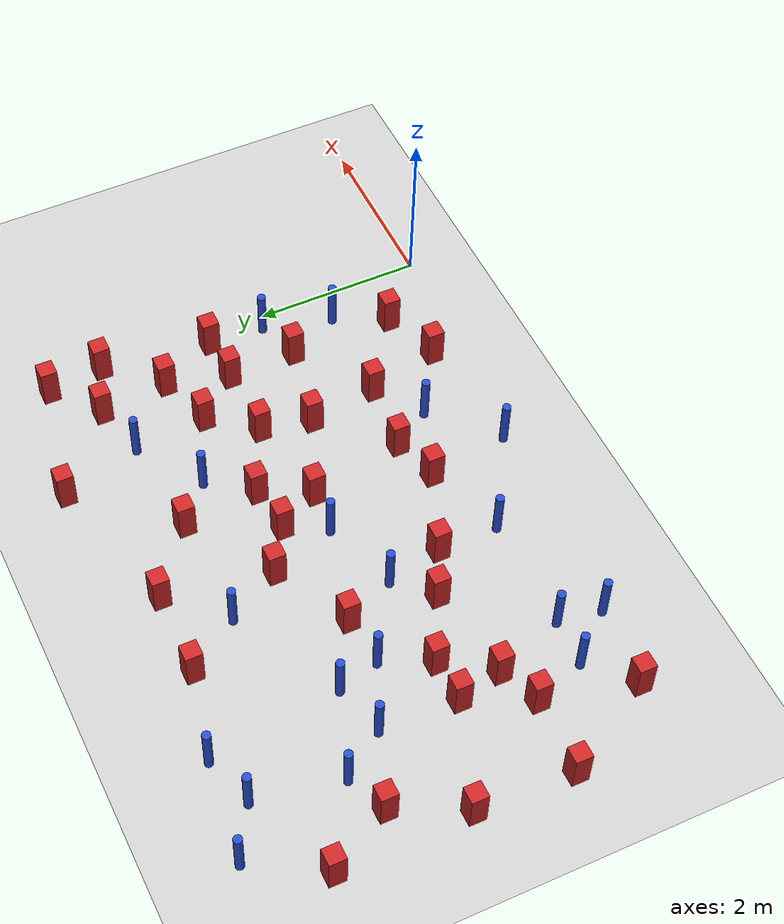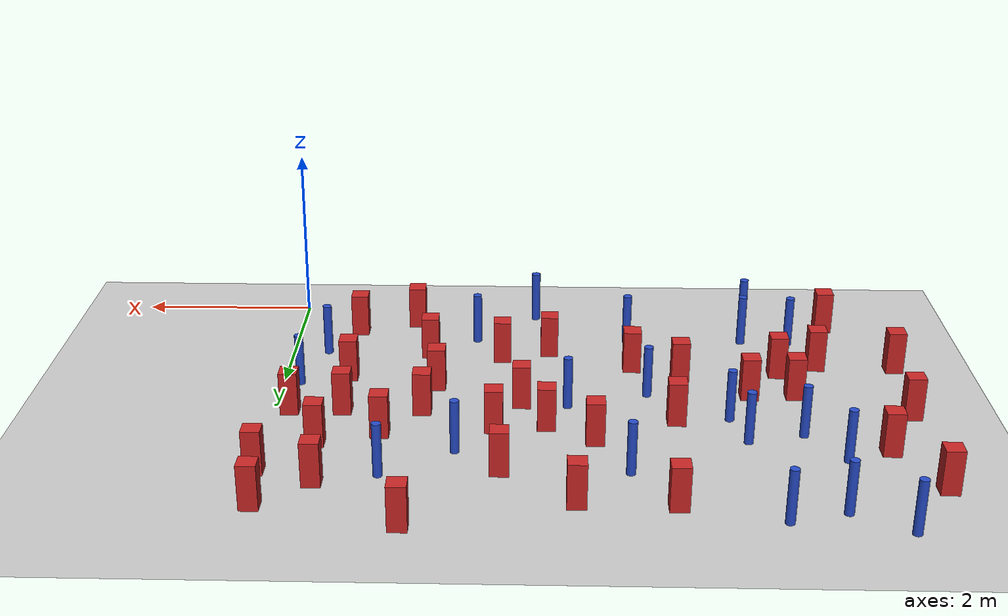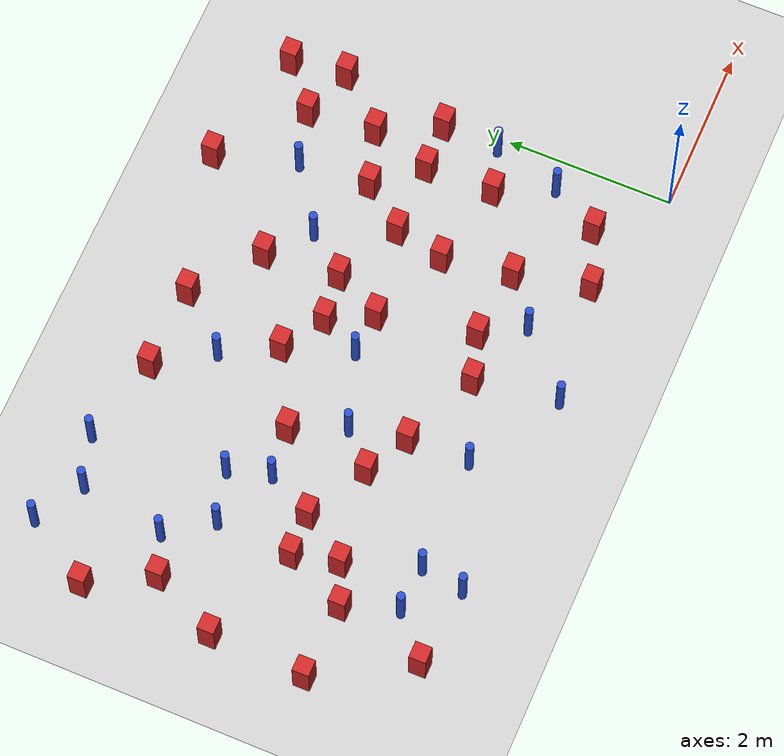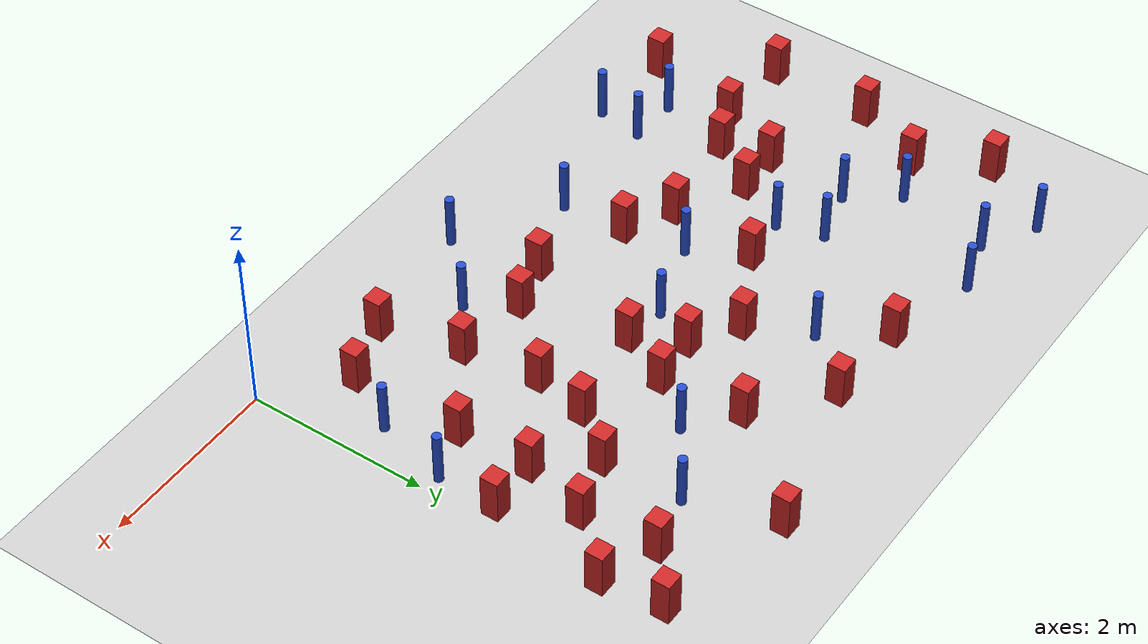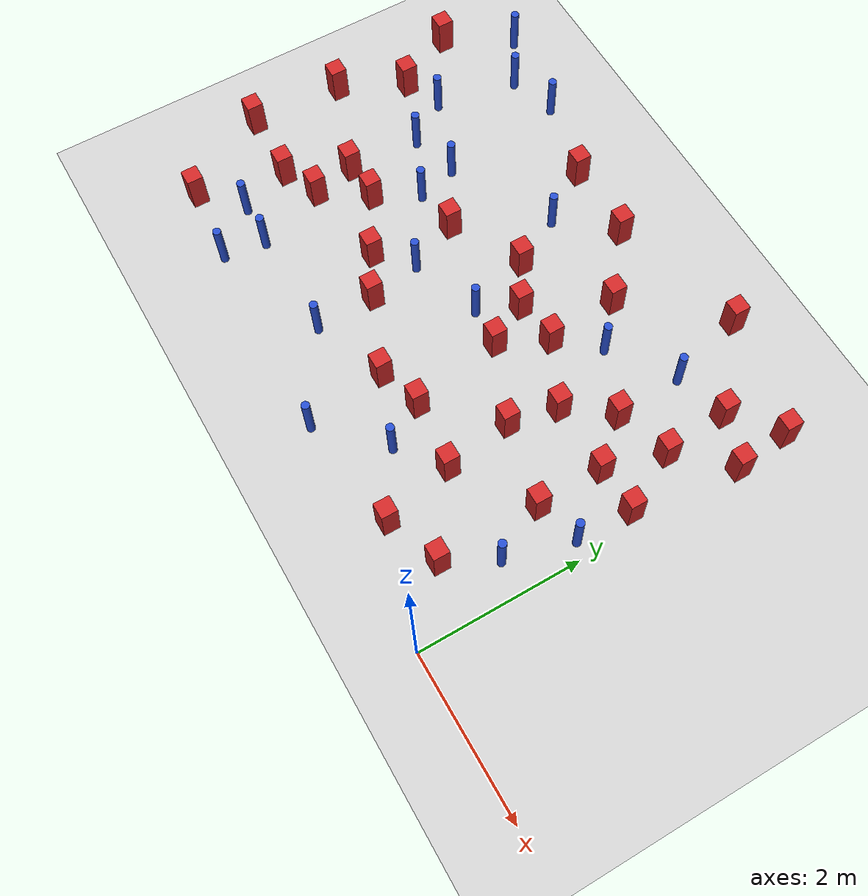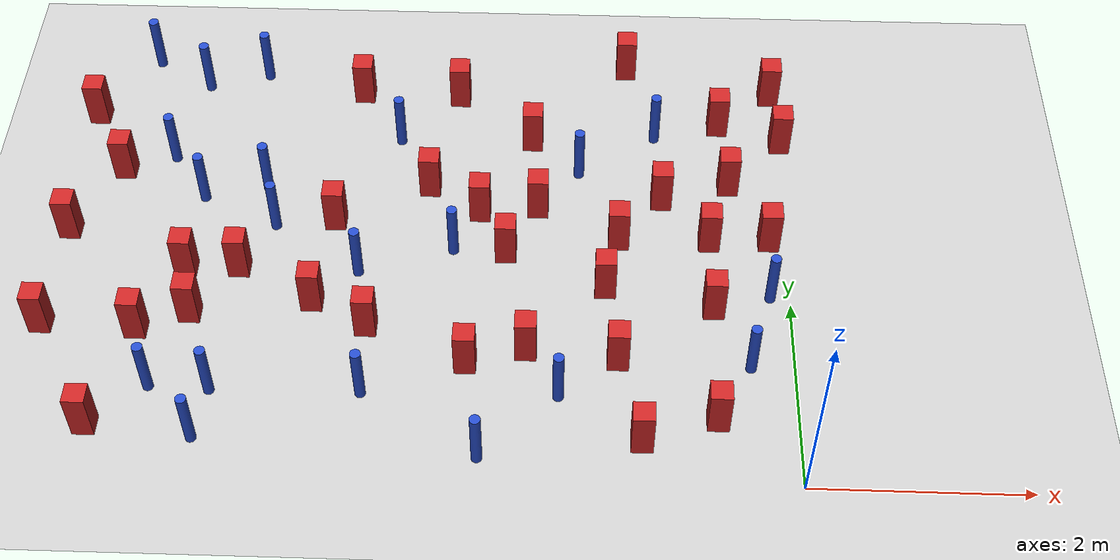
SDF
<sdf version="1.6">
 <world name="default">
  <model name="ground_plane">
   <static>1</static>
   <link name="link">
    <collision name="collision">
     <geometry><plane><normal>0 0 1</normal><size>100 100</size></plane></geometry>
     <surface><friction><ode><mu>100</mu><mu2>50</mu2></ode></friction></surface>
    </collision>
    <visual name="visual">
     <cast_shadows>0</cast_shadows>
     <geometry><plane><normal>0 0 1</normal><size>100 100</size></plane></geometry>
     <material>
      <ambient>1.0 1.0 1.0 1.0</ambient>
      <diffuse>0.8 0.8 0.8 1.0</diffuse>
      <specular>0.01 0.01 0.01 1.000000</specular>
     </material>
    </visual>
   </link>
  </model>
  <model name="pole_obstacle0">
   <static>true</static>
   <pose>-4.95712828938 2.83701264804 2.88873142074e-08 -9.90536690245e-09 4.6021994898e-07 -1.20965994966e-07</pose>
   <link name="link">
    <pose>0 0 0.3 0 -0 0</pose>
    <inertial>
     <mass>1</mass>
     <inertia><ixx>0.145833</ixx><ixy>0</ixy><ixz>0</ixz><iyy>0.145833</iyy><iyz>0</iyz><izz>0.125</izz></inertia>
    </inertial>
    <collision name="collision">
     <geometry><cylinder><radius>0.05</radius><length>.6</length></cylinder></geometry>
    </collision>
    <visual name="visual">
     <geometry><cylinder><radius>0.05</radius><length>.6</length></cylinder></geometry>
     <material>
      <script><name>Gazebo/Blue</name><uri>file://media/materials/scripts/gazebo.material</uri></script>
     </material>
    </visual>
   </link>
  </model>
  <model name="pole_obstacle1">
   <static>true</static>
   <pose>-2.85706242391 0.220407652217 2.88873142074e-08 -9.90536689395e-09 4.60219949e-07 -1.20965994954e-07</pose>
   <link name="link">
    <pose>0 0 0.3 0 -0 0</pose>
    <inertial>
     <mass>1</mass>
     <inertia><ixx>0.145833</ixx><ixy>0</ixy><ixz>0</ixz><iyy>0.145833</iyy><iyz>0</iyz><izz>0.125</izz></inertia>
    </inertial>
    <collision name="collision">
     <geometry><cylinder><radius>0.05</radius><length>.6</length></cylinder></geometry>
    </collision>
    <visual name="visual">
     <geometry><cylinder><radius>0.05</radius><length>.6</length></cylinder></geometry>
     <material>
      <script><name>Gazebo/Blue</name><uri>file://media/materials/scripts/gazebo.material</uri></script>
     </material>
    </visual>
   </link>
  </model>
  <model name="square_post_obstacle3">
   <static>true</static>
   <pose>-4.37450130229 2.90304461546 8.22691968438e-08 7.2212513382e-06 -7.54495500217e-07 2.29674213826e-05</pose>
   <link name="link">
    <pose>0 0 0.25 0 -0 0</pose>
    <inertial>
     <mass>100</mass>
     <inertia>
      <ixx>0.166667</ixx>
      <ixy>0</ixy>
      <ixz>0</ixz>
      <iyy>0.166667</iyy>
      <iyz>0</iyz>
      <izz>0.166667</izz>
     </inertia>
    </inertial>
    <collision name="collision"><geometry><box><size>.2 .2 .5</size></box></geometry></collision>
    <visual name="visual">
     <geometry><box><size>.2 .2 .5</size></box></geometry>
     <material>
      <script><name>Gazebo/Red</name><uri>file://media/materials/scripts/gazebo.material</uri></script>
     </material>
    </visual>
   </link>
  </model>
  <model name="square_post_obstacle5">
   <static>true</static>
   <pose>-0.730659608983 0.664554356461 8.22691968438e-08 7.2212513382e-06 -7.54495500217e-07 2.29674213826e-05</pose>
   <link name="link">
    <pose>0 0 0.25 0 -0 0</pose>
    <inertial>
     <mass>100</mass>
     <inertia>
      <ixx>0.166667</ixx>
      <ixy>0</ixy>
      <ixz>0</ixz>
      <iyy>0.166667</iyy>
      <iyz>0</iyz>
      <izz>0.166667</izz>
     </inertia>
    </inertial>
    <collision name="collision"><geometry><box><size>.2 .2 .5</size></box></geometry></collision>
    <visual name="visual">
     <geometry><box><size>.2 .2 .5</size></box></geometry>
     <material>
      <script><name>Gazebo/Red</name><uri>file://media/materials/scripts/gazebo.material</uri></script>
     </material>
    </visual>
   </link>
  </model>
  <model name="square_post_obstacle6">
   <static>true</static>
   <pose>-6.9856799649 1.56313653754 8.22691968438e-08 7.2212513382e-06 -7.54495500217e-07 2.29674213826e-05</pose>
   <link name="link">
    <pose>0 0 0.25 0 -0 0</pose>
    <inertial>
     <mass>100</mass>
     <inertia>
      <ixx>0.166667</ixx>
      <ixy>0</ixy>
      <ixz>0</ixz>
      <iyy>0.166667</iyy>
      <iyz>0</iyz>
      <izz>0.166667</izz>
     </inertia>
    </inertial>
    <collision name="collision"><geometry><box><size>.2 .2 .5</size></box></geometry></collision>
    <visual name="visual">
     <geometry><box><size>.2 .2 .5</size></box></geometry>
     <material>
      <script><name>Gazebo/Red</name><uri>file://media/materials/scripts/gazebo.material</uri></script>
     </material>
    </visual>
   </link>
  </model>
  <model name="square_post_obstacle11">
   <static>true</static>
   <pose>-6.94486312321 2.71346720038 8.22691968438e-08 7.2212513382e-06 -7.54495500217e-07 2.29674213826e-05</pose>
   <link name="link">
    <pose>0 0 0.25 0 -0 0</pose>
    <inertial>
     <mass>100</mass>
     <inertia>
      <ixx>0.166667</ixx>
      <ixy>0</ixy>
      <ixz>0</ixz>
      <iyy>0.166667</iyy>
      <iyz>0</iyz>
      <izz>0.166667</izz>
     </inertia>
    </inertial>
    <collision name="collision"><geometry><box><size>.2 .2 .5</size></box></geometry></collision>
    <visual name="visual">
     <geometry><box><size>.2 .2 .5</size></box></geometry>
     <material>
      <script><name>Gazebo/Red</name><uri>file://media/materials/scripts/gazebo.material</uri></script>
     </material>
    </visual>
   </link>
  </model>
  <model name="square_post_obstacle19">
   <static>true</static>
   <pose>-5.61994404278 1.72497095226 8.22691968438e-08 7.2212513382e-06 -7.54495500217e-07 2.29674213826e-05</pose>
   <link name="link">
    <pose>0 0 0.25 0 -0 0</pose>
    <inertial>
     <mass>100</mass>
     <inertia>
      <ixx>0.166667</ixx>
      <ixy>0</ixy>
      <ixz>0</ixz>
      <iyy>0.166667</iyy>
      <iyz>0</iyz>
      <izz>0.166667</izz>
     </inertia>
    </inertial>
    <collision name="collision"><geometry><box><size>.2 .2 .5</size></box></geometry></collision>
    <visual name="visual">
     <geometry><box><size>.2 .2 .5</size></box></geometry>
     <material>
      <script><name>Gazebo/Red</name><uri>file://media/materials/scripts/gazebo.material</uri></script>
     </material>
    </visual>
   </link>
  </model>
  <model name="square_post_obstacle29">
   <static>true</static>
   <pose>-6.95620068663 4.26821468196 8.22691968438e-08 7.2212513382e-06 -7.54495500217e-07 2.29674213826e-05</pose>
   <link name="link">
    <pose>0 0 0.25 0 -0 0</pose>
    <inertial>
     <mass>100</mass>
     <inertia>
      <ixx>0.166667</ixx>
      <ixy>0</ixy>
      <ixz>0</ixz>
      <iyy>0.166667</iyy>
      <iyz>0</iyz>
      <izz>0.166667</izz>
     </inertia>
    </inertial>
    <collision name="collision"><geometry><box><size>.2 .2 .5</size></box></geometry></collision>
    <visual name="visual">
     <geometry><box><size>.2 .2 .5</size></box></geometry>
     <material>
      <script><name>Gazebo/Red</name><uri>file://media/materials/scripts/gazebo.material</uri></script>
     </material>
    </visual>
   </link>
  </model>
  <model name="square_post_obstacle31">
   <static>true</static>
   <pose>-1.5469657475 5.08174019742 8.22691968438e-08 7.2212513382e-06 -7.54495500217e-07 2.29674213826e-05</pose>
   <link name="link">
    <pose>0 0 0.25 0 -0 0</pose>
    <inertial>
     <mass>100</mass>
     <inertia>
      <ixx>0.166667</ixx>
      <ixy>0</ixy>
      <ixz>0</ixz>
      <iyy>0.166667</iyy>
      <iyz>0</iyz>
      <izz>0.166667</izz>
     </inertia>
    </inertial>
    <collision name="collision"><geometry><box><size>.2 .2 .5</size></box></geometry></collision>
    <visual name="visual">
     <geometry><box><size>.2 .2 .5</size></box></geometry>
     <material>
      <script><name>Gazebo/Red</name><uri>file://media/materials/scripts/gazebo.material</uri></script>
     </material>
    </visual>
   </link>
  </model>
  <model name="square_post_obstacle37">
   <static>true</static>
   <pose>-4.2551219265 4.65670310178 8.22691968438e-08 7.2212513382e-06 -7.54495500217e-07 2.29674213826e-05</pose>
   <link name="link">
    <pose>0 0 0.25 0 -0 0</pose>
    <inertial>
     <mass>100</mass>
     <inertia>
      <ixx>0.166667</ixx>
      <ixy>0</ixy>
      <ixz>0</ixz>
      <iyy>0.166667</iyy>
      <iyz>0</iyz>
      <izz>0.166667</izz>
     </inertia>
    </inertial>
    <collision name="collision"><geometry><box><size>.2 .2 .5</size></box></geometry></collision>
    <visual name="visual">
     <geometry><box><size>.2 .2 .5</size></box></geometry>
     <material>
      <script><name>Gazebo/Red</name><uri>file://media/materials/scripts/gazebo.material</uri></script>
     </material>
    </visual>
   </link>
  </model>
  <model name="pole_obstacle44">
   <static>true</static>
   <pose>-5.86888871289 0.890112660496 2.88873142074e-08 -9.90536689837e-09 4.60219948989e-07 -1.2096599496e-07</pose>
   <link name="link">
    <pose>0 0 0.3 0 -0 0</pose>
    <inertial>
     <mass>1</mass>
     <inertia><ixx>0.145833</ixx><ixy>0</ixy><ixz>0</ixz><iyy>0.145833</iyy><iyz>0</iyz><izz>0.125</izz></inertia>
    </inertial>
    <collision name="collision">
     <geometry><cylinder><radius>0.05</radius><length>.6</length></cylinder></geometry>
    </collision>
    <visual name="visual">
     <geometry><cylinder><radius>0.05</radius><length>.6</length></cylinder></geometry>
     <material>
      <script><name>Gazebo/Blue</name><uri>file://media/materials/scripts/gazebo.material</uri></script>
     </material>
    </visual>
   </link>
  </model>
  <model name="square_post_obstacle43">
   <static>true</static>
   <pose>-6.09037337012 1.52529887792 8.22691968438e-08 7.2212513382e-06 -7.54495500217e-07 2.29674213826e-05</pose>
   <link name="link">
    <pose>0 0 0.25 0 -0 0</pose>
    <inertial>
     <mass>100</mass>
     <inertia>
      <ixx>0.166667</ixx>
      <ixy>0</ixy>
      <ixz>0</ixz>
      <iyy>0.166667</iyy>
      <iyz>0</iyz>
      <izz>0.166667</izz>
     </inertia>
    </inertial>
    <collision name="collision"><geometry><box><size>.2 .2 .5</size></box></geometry></collision>
    <visual name="visual">
     <geometry><box><size>.2 .2 .5</size></box></geometry>
     <material>
      <script><name>Gazebo/Red</name><uri>file://media/materials/scripts/gazebo.material</uri></script>
     </material>
    </visual>
   </link>
  </model>
  <model name="square_post_obstacle49">
   <static>true</static>
   <pose>-1.20188594863 3.25786426726 8.22691968438e-08 7.2212513382e-06 -7.54495500217e-07 2.29674213826e-05</pose>
   <link name="link">
    <pose>0 0 0.25 0 -0 0</pose>
    <inertial>
     <mass>100</mass>
     <inertia>
      <ixx>0.166667</ixx>
      <ixy>0</ixy>
      <ixz>0</ixz>
      <iyy>0.166667</iyy>
      <iyz>0</iyz>
      <izz>0.166667</izz>
     </inertia>
    </inertial>
    <collision name="collision"><geometry><box><size>.2 .2 .5</size></box></geometry></collision>
    <visual name="visual">
     <geometry><box><size>.2 .2 .5</size></box></geometry>
     <material>
      <script><name>Gazebo/Red</name><uri>file://media/materials/scripts/gazebo.material</uri></script>
     </material>
    </visual>
   </link>
  </model>
  <model name="square_post_obstacle58">
   <static>true</static>
   <pose>-4.49404482766 1.89432279695 8.22691968438e-08 7.2212513382e-06 -7.54495500217e-07 2.29674213826e-05</pose>
   <link name="link">
    <pose>0 0 0.25 0 -0 0</pose>
    <inertial>
     <mass>100</mass>
     <inertia>
      <ixx>0.166667</ixx>
      <ixy>0</ixy>
      <ixz>0</ixz>
      <iyy>0.166667</iyy>
      <iyz>0</iyz>
      <izz>0.166667</izz>
     </inertia>
    </inertial>
    <collision name="collision"><geometry><box><size>.2 .2 .5</size></box></geometry></collision>
    <visual name="visual">
     <geometry><box><size>.2 .2 .5</size></box></geometry>
     <material>
      <script><name>Gazebo/Red</name><uri>file://media/materials/scripts/gazebo.material</uri></script>
     </material>
    </visual>
   </link>
  </model>
  <model name="square_post_obstacle60">
   <static>true</static>
   <pose>-2.48905676557 4.02160287807 8.22691968438e-08 7.22125133819e-06 -7.54495500217e-07 2.29674213826e-05</pose>
   <link name="link">
    <pose>0 0 0.25 0 -0 0</pose>
    <inertial>
     <mass>100</mass>
     <inertia>
      <ixx>0.166667</ixx>
      <ixy>0</ixy>
      <ixz>0</ixz>
      <iyy>0.166667</iyy>
      <iyz>0</iyz>
      <izz>0.166667</izz>
     </inertia>
    </inertial>
    <collision name="collision"><geometry><box><size>.2 .2 .5</size></box></geometry></collision>
    <visual name="visual">
     <geometry><box><size>.2 .2 .5</size></box></geometry>
     <material>
      <script><name>Gazebo/Red</name><uri>file://media/materials/scripts/gazebo.material</uri></script>
     </material>
    </visual>
   </link>
  </model>
  <model name="square_post_obstacle63">
   <static>true</static>
   <pose>-1.62249760921 1.29957290921 8.22691968438e-08 7.2212513382e-06 -7.54495500217e-07 2.29674213826e-05</pose>
   <link name="link">
    <pose>0 0 0.25 0 -0 0</pose>
    <inertial>
     <mass>100</mass>
     <inertia>
      <ixx>0.166667</ixx>
      <ixy>0</ixy>
      <ixz>0</ixz>
      <iyy>0.166667</iyy>
      <iyz>0</iyz>
      <izz>0.166667</izz>
     </inertia>
    </inertial>
    <collision name="collision"><geometry><box><size>.2 .2 .5</size></box></geometry></collision>
    <visual name="visual">
     <geometry><box><size>.2 .2 .5</size></box></geometry>
     <material>
      <script><name>Gazebo/Red</name><uri>file://media/materials/scripts/gazebo.material</uri></script>
     </material>
    </visual>
   </link>
  </model>
  <model name="square_post_obstacle65">
   <static>true</static>
   <pose>-2.46734823515 1.38465040935 8.22691968438e-08 7.2212513382e-06 -7.54495500217e-07 2.29674213826e-05</pose>
   <link name="link">
    <pose>0 0 0.25 0 -0 0</pose>
    <inertial>
     <mass>100</mass>
     <inertia>
      <ixx>0.166667</ixx>
      <ixy>0</ixy>
      <ixz>0</ixz>
      <iyy>0.166667</iyy>
      <iyz>0</iyz>
      <izz>0.166667</izz>
     </inertia>
    </inertial>
    <collision name="collision"><geometry><box><size>.2 .2 .5</size></box></geometry></collision>
    <visual name="visual">
     <geometry><box><size>.2 .2 .5</size></box></geometry>
     <material>
      <script><name>Gazebo/Red</name><uri>file://media/materials/scripts/gazebo.material</uri></script>
     </material>
    </visual>
   </link>
  </model>
  <model name="square_post_obstacle67">
   <static>true</static>
   <pose>-0.747679735468 2.73688719671 8.22691968438e-08 7.2212513382e-06 -7.54495500217e-07 2.29674213826e-05</pose>
   <link name="link">
    <pose>0 0 0.25 0 -0 0</pose>
    <inertial>
     <mass>100</mass>
     <inertia>
      <ixx>0.166667</ixx>
      <ixy>0</ixy>
      <ixz>0</ixz>
      <iyy>0.166667</iyy>
      <iyz>0</iyz>
      <izz>0.166667</izz>
     </inertia>
    </inertial>
    <collision name="collision"><geometry><box><size>.2 .2 .5</size></box></geometry></collision>
    <visual name="visual">
     <geometry><box><size>.2 .2 .5</size></box></geometry>
     <material>
      <script><name>Gazebo/Red</name><uri>file://media/materials/scripts/gazebo.material</uri></script>
     </material>
    </visual>
   </link>
  </model>
  <model name="square_post_obstacle70">
   <static>true</static>
   <pose>-3.01577135138 1.22164306386 8.22691968438e-08 7.2212513382e-06 -7.54495500217e-07 2.29674213826e-05</pose>
   <link name="link">
    <pose>0 0 0.25 0 -0 0</pose>
    <inertial>
     <mass>100</mass>
     <inertia>
      <ixx>0.166667</ixx>
      <ixy>0</ixy>
      <ixz>0</ixz>
      <iyy>0.166667</iyy>
      <iyz>0</iyz>
      <izz>0.166667</izz>
     </inertia>
    </inertial>
    <collision name="collision"><geometry><box><size>.2 .2 .5</size></box></geometry></collision>
    <visual name="visual">
     <geometry><box><size>.2 .2 .5</size></box></geometry>
     <material>
      <script><name>Gazebo/Red</name><uri>file://media/materials/scripts/gazebo.material</uri></script>
     </material>
    </visual>
   </link>
  </model>
  <model name="square_post_obstacle72">
   <static>true</static>
   <pose>-2.97270595261 3.05502779473 8.22691968438e-08 7.2212513382e-06 -7.54495500217e-07 2.29674213826e-05</pose>
   <link name="link">
    <pose>0 0 0.25 0 -0 0</pose>
    <inertial>
     <mass>100</mass>
     <inertia>
      <ixx>0.166667</ixx>
      <ixy>0</ixy>
      <ixz>0</ixz>
      <iyy>0.166667</iyy>
      <iyz>0</iyz>
      <izz>0.166667</izz>
     </inertia>
    </inertial>
    <collision name="collision"><geometry><box><size>.2 .2 .5</size></box></geometry></collision>
    <visual name="visual">
     <geometry><box><size>.2 .2 .5</size></box></geometry>
     <material>
      <script><name>Gazebo/Red</name><uri>file://media/materials/scripts/gazebo.material</uri></script>
     </material>
    </visual>
   </link>
  </model>
  <model name="pole_obstacle69">
   <static>true</static>
   <pose>-5.29432924056 4.90941699968 2.88873142074e-08 -9.90536690842e-09 4.60219948965e-07 -1.20965994976e-07</pose>
   <link name="link">
    <pose>0 0 0.3 0 -0 0</pose>
    <inertial>
     <mass>1</mass>
     <inertia><ixx>0.145833</ixx><ixy>0</ixy><ixz>0</ixz><iyy>0.145833</iyy><iyz>0</iyz><izz>0.125</izz></inertia>
    </inertial>
    <collision name="collision">
     <geometry><cylinder><radius>0.05</radius><length>.6</length></cylinder></geometry>
    </collision>
    <visual name="visual">
     <geometry><cylinder><radius>0.05</radius><length>.6</length></cylinder></geometry>
     <material>
      <script><name>Gazebo/Blue</name><uri>file://media/materials/scripts/gazebo.material</uri></script>
     </material>
    </visual>
   </link>
  </model>
  <model name="pole_obstacle77">
   <static>true</static>
   <pose>-6.07980351752 3.70291415139 2.88873142074e-08 -9.90536690245e-09 4.6021994898e-07 -1.20965994966e-07</pose>
   <link name="link">
    <pose>0 0 0.3 0 -0 0</pose>
    <inertial>
     <mass>1</mass>
     <inertia><ixx>0.145833</ixx><ixy>0</ixy><ixz>0</ixz><iyy>0.145833</iyy><iyz>0</iyz><izz>0.125</izz></inertia>
    </inertial>
    <collision name="collision">
     <geometry><cylinder><radius>0.05</radius><length>.6</length></cylinder></geometry>
    </collision>
    <visual name="visual">
     <geometry><cylinder><radius>0.05</radius><length>.6</length></cylinder></geometry>
     <material>
      <script><name>Gazebo/Blue</name><uri>file://media/materials/scripts/gazebo.material</uri></script>
     </material>
    </visual>
   </link>
  </model>
  <model name="pole_obstacle85">
   <static>true</static>
   <pose>-2.01616319621 3.60882619398 2.88873142074e-08 -9.90536692171e-09 4.60219948934e-07 -1.20965994985e-07</pose>
   <link name="link">
    <pose>0 0 0.3 0 -0 0</pose>
    <inertial>
     <mass>1</mass>
     <inertia><ixx>0.145833</ixx><ixy>0</ixy><ixz>0</ixz><iyy>0.145833</iyy><iyz>0</iyz><izz>0.125</izz></inertia>
    </inertial>
    <collision name="collision">
     <geometry><cylinder><radius>0.05</radius><length>.6</length></cylinder></geometry>
    </collision>
    <visual name="visual">
     <geometry><cylinder><radius>0.05</radius><length>.6</length></cylinder></geometry>
     <material>
      <script><name>Gazebo/Blue</name><uri>file://media/materials/scripts/gazebo.material</uri></script>
     </material>
    </visual>
   </link>
  </model>
  <model name="pole_obstacle86">
   <static>true</static>
   <pose>-0.407379953421 1.25896090717 2.88873142074e-08 -9.90536689905e-09 4.60219948988e-07 -1.2096599496e-07</pose>
   <link name="link">
    <pose>0 0 0.3 0 -0 0</pose>
    <inertial>
     <mass>1</mass>
     <inertia><ixx>0.145833</ixx><ixy>0</ixy><ixz>0</ixz><iyy>0.145833</iyy><iyz>0</iyz><izz>0.125</izz></inertia>
    </inertial>
    <collision name="collision">
     <geometry><cylinder><radius>0.05</radius><length>.6</length></cylinder></geometry>
    </collision>
    <visual name="visual">
     <geometry><cylinder><radius>0.05</radius><length>.6</length></cylinder></geometry>
     <material>
      <script><name>Gazebo/Blue</name><uri>file://media/materials/scripts/gazebo.material</uri></script>
     </material>
    </visual>
   </link>
  </model>
  <model name="square_post_obstacle81">
   <static>true</static>
   <pose>-0.0723024862819 4.73773867734 8.22691968438e-08 7.2212513382e-06 -7.54495500217e-07 2.29674213826e-05</pose>
   <link name="link">
    <pose>0 0 0.25 0 -0 0</pose>
    <inertial>
     <mass>100</mass>
     <inertia>
      <ixx>0.166667</ixx>
      <ixy>0</ixy>
      <ixz>0</ixz>
      <iyy>0.166667</iyy>
      <iyz>0</iyz>
      <izz>0.166667</izz>
     </inertia>
    </inertial>
    <collision name="collision"><geometry><box><size>.2 .2 .5</size></box></geometry></collision>
    <visual name="visual">
     <geometry><box><size>.2 .2 .5</size></box></geometry>
     <material>
      <script><name>Gazebo/Red</name><uri>file://media/materials/scripts/gazebo.material</uri></script>
     </material>
    </visual>
   </link>
  </model>
  <model name="pole_obstacle96">
   <static>true</static>
   <pose>-5.3923981618 0.351826577554 2.88873142074e-08 -9.90536689981e-09 4.60219948986e-07 -1.20965994962e-07</pose>
   <link name="link">
    <pose>0 0 0.3 0 -0 0</pose>
    <inertial>
     <mass>1</mass>
     <inertia><ixx>0.145833</ixx><ixy>0</ixy><ixz>0</ixz><iyy>0.145833</iyy><iyz>0</iyz><izz>0.125</izz></inertia>
    </inertial>
    <collision name="collision">
     <geometry><cylinder><radius>0.05</radius><length>.6</length></cylinder></geometry>
    </collision>
    <visual name="visual">
     <geometry><cylinder><radius>0.05</radius><length>.6</length></cylinder></geometry>
     <material>
      <script><name>Gazebo/Blue</name><uri>file://media/materials/scripts/gazebo.material</uri></script>
     </material>
    </visual>
   </link>
  </model>
  <model name="square_post_obstacle94">
   <static>true</static>
   <pose>-0.616522475875 4.28707112451 8.22691968438e-08 7.2212513382e-06 -7.54495500217e-07 2.29674213826e-05</pose>
   <link name="link">
    <pose>0 0 0.25 0 -0 0</pose>
    <inertial>
     <mass>100</mass>
     <inertia>
      <ixx>0.166667</ixx>
      <ixy>0</ixy>
      <ixz>0</ixz>
      <iyy>0.166667</iyy>
      <iyz>0</iyz>
      <izz>0.166667</izz>
     </inertia>
    </inertial>
    <collision name="collision"><geometry><box><size>.2 .2 .5</size></box></geometry></collision>
    <visual name="visual">
     <geometry><box><size>.2 .2 .5</size></box></geometry>
     <material>
      <script><name>Gazebo/Red</name><uri>file://media/materials/scripts/gazebo.material</uri></script>
     </material>
    </visual>
   </link>
  </model>
  <model name="square_post_obstacle100">
   <static>true</static>
   <pose>-3.25838881653 4.6297312421 8.22691968438e-08 7.2212513382e-06 -7.54495500217e-07 2.29674213826e-05</pose>
   <link name="link">
    <pose>0 0 0.25 0 -0 0</pose>
    <inertial>
     <mass>100</mass>
     <inertia>
      <ixx>0.166667</ixx>
      <ixy>0</ixy>
      <ixz>0</ixz>
      <iyy>0.166667</iyy>
      <iyz>0</iyz>
      <izz>0.166667</izz>
     </inertia>
    </inertial>
    <collision name="collision"><geometry><box><size>.2 .2 .5</size></box></geometry></collision>
    <visual name="visual">
     <geometry><box><size>.2 .2 .5</size></box></geometry>
     <material>
      <script><name>Gazebo/Red</name><uri>file://media/materials/scripts/gazebo.material</uri></script>
     </material>
    </visual>
   </link>
  </model>
  <model name="square_post_obstacle103">
   <static>true</static>
   <pose>-2.70080992367 2.54083231622 8.22691968438e-08 7.2212513382e-06 -7.54495500217e-07 2.29674213826e-05</pose>
   <link name="link">
    <pose>0 0 0.25 0 -0 0</pose>
    <inertial>
     <mass>100</mass>
     <inertia>
      <ixx>0.166667</ixx>
      <ixy>0</ixy>
      <ixz>0</ixz>
      <iyy>0.166667</iyy>
      <iyz>0</iyz>
      <izz>0.166667</izz>
     </inertia>
    </inertial>
    <collision name="collision"><geometry><box><size>.2 .2 .5</size></box></geometry></collision>
    <visual name="visual">
     <geometry><box><size>.2 .2 .5</size></box></geometry>
     <material>
      <script><name>Gazebo/Red</name><uri>file://media/materials/scripts/gazebo.material</uri></script>
     </material>
    </visual>
   </link>
  </model>
  <model name="pole_obstacle119">
   <static>true</static>
   <pose>-3.94390218304 0.876266392631 2.88873142074e-08 -9.90536689285e-09 4.60219949002e-07 -1.20965994953e-07</pose>
   <link name="link">
    <pose>0 0 0.3 0 -0 0</pose>
    <inertial>
     <mass>1</mass>
     <inertia><ixx>0.145833</ixx><ixy>0</ixy><ixz>0</ixz><iyy>0.145833</iyy><iyz>0</iyz><izz>0.125</izz></inertia>
    </inertial>
    <collision name="collision">
     <geometry><cylinder><radius>0.05</radius><length>.6</length></cylinder></geometry>
    </collision>
    <visual name="visual">
     <geometry><cylinder><radius>0.05</radius><length>.6</length></cylinder></geometry>
     <material>
      <script><name>Gazebo/Blue</name><uri>file://media/materials/scripts/gazebo.material</uri></script>
     </material>
    </visual>
   </link>
  </model>
  <model name="pole_obstacle120">
   <static>true</static>
   <pose>-3.82568962785 4.01331025939 2.88873142074e-08 -9.9053668917e-09 4.60219949005e-07 -1.20965994951e-07</pose>
   <link name="link">
    <pose>0 0 0.3 0 -0 0</pose>
    <inertial>
     <mass>1</mass>
     <inertia><ixx>0.145833</ixx><ixy>0</ixy><ixz>0</ixz><iyy>0.145833</iyy><iyz>0</iyz><izz>0.125</izz></inertia>
    </inertial>
    <collision name="collision">
     <geometry><cylinder><radius>0.05</radius><length>.6</length></cylinder></geometry>
    </collision>
    <visual name="visual">
     <geometry><cylinder><radius>0.05</radius><length>.6</length></cylinder></geometry>
     <material>
      <script><name>Gazebo/Blue</name><uri>file://media/materials/scripts/gazebo.material</uri></script>
     </material>
    </visual>
   </link>
  </model>
  <model name="square_post_obstacle117">
   <static>true</static>
   <pose>-3.96212489532 1.6158251256 8.22691968438e-08 7.2212513382e-06 -7.54495500217e-07 2.29674213826e-05</pose>
   <link name="link">
    <pose>0 0 0.25 0 -0 0</pose>
    <inertial>
     <mass>100</mass>
     <inertia>
      <ixx>0.166667</ixx>
      <ixy>0</ixy>
      <ixz>0</ixz>
      <iyy>0.166667</iyy>
      <iyz>0</iyz>
      <izz>0.166667</izz>
     </inertia>
    </inertial>
    <collision name="collision"><geometry><box><size>.2 .2 .5</size></box></geometry></collision>
    <visual name="visual">
     <geometry><box><size>.2 .2 .5</size></box></geometry>
     <material>
      <script><name>Gazebo/Red</name><uri>file://media/materials/scripts/gazebo.material</uri></script>
     </material>
    </visual>
   </link>
  </model>
  <model name="pole_obstacle139">
   <static>true</static>
   <pose>-6.46822199835 5.06950417689 2.88873142074e-08 -9.90536690842e-09 4.60219948965e-07 -1.20965994976e-07</pose>
   <link name="link">
    <pose>0 0 0.3 0 -0 0</pose>
    <inertial>
     <mass>1</mass>
     <inertia><ixx>0.145833</ixx><ixy>0</ixy><ixz>0</ixz><iyy>0.145833</iyy><iyz>0</iyz><izz>0.125</izz></inertia>
    </inertial>
    <collision name="collision">
     <geometry><cylinder><radius>0.05</radius><length>.6</length></cylinder></geometry>
    </collision>
    <visual name="visual">
     <geometry><cylinder><radius>0.05</radius><length>.6</length></cylinder></geometry>
     <material>
      <script><name>Gazebo/Blue</name><uri>file://media/materials/scripts/gazebo.material</uri></script>
     </material>
    </visual>
   </link>
  </model>
  <model name="square_post_obstacle123">
   <static>true</static>
   <pose>-6.35162419796 0.453448920349 8.22691968438e-08 7.2212513382e-06 -7.54495500217e-07 2.29674213826e-05</pose>
   <link name="link">
    <pose>0 0 0.25 0 -0 0</pose>
    <inertial>
     <mass>100</mass>
     <inertia>
      <ixx>0.166667</ixx>
      <ixy>0</ixy>
      <ixz>0</ixz>
      <iyy>0.166667</iyy>
      <iyz>0</iyz>
      <izz>0.166667</izz>
     </inertia>
    </inertial>
    <collision name="collision"><geometry><box><size>.2 .2 .5</size></box></geometry></collision>
    <visual name="visual">
     <geometry><box><size>.2 .2 .5</size></box></geometry>
     <material>
      <script><name>Gazebo/Red</name><uri>file://media/materials/scripts/gazebo.material</uri></script>
     </material>
    </visual>
   </link>
  </model>
  <model name="square_post_obstacle132">
   <static>true</static>
   <pose>-1.74363880645 2.13365518484 8.22691968438e-08 7.2212513382e-06 -7.54495500217e-07 2.29674213826e-05</pose>
   <link name="link">
    <pose>0 0 0.25 0 -0 0</pose>
    <inertial>
     <mass>100</mass>
     <inertia>
      <ixx>0.166667</ixx>
      <ixy>0</ixy>
      <ixz>0</ixz>
      <iyy>0.166667</iyy>
      <iyz>0</iyz>
      <izz>0.166667</izz>
     </inertia>
    </inertial>
    <collision name="collision"><geometry><box><size>.2 .2 .5</size></box></geometry></collision>
    <visual name="visual">
     <geometry><box><size>.2 .2 .5</size></box></geometry>
     <material>
      <script><name>Gazebo/Red</name><uri>file://media/materials/scripts/gazebo.material</uri></script>
     </material>
    </visual>
   </link>
  </model>
  <model name="square_post_obstacle145">
   <static>true</static>
   <pose>0.00400108538619 4.0630002991 8.22691968438e-08 7.22125133819e-06 -7.54495500217e-07 2.29674213826e-05</pose>
   <link name="link">
    <pose>0 0 0.25 0 -0 0</pose>
    <inertial>
     <mass>100</mass>
     <inertia>
      <ixx>0.166667</ixx>
      <ixy>0</ixy>
      <ixz>0</ixz>
      <iyy>0.166667</iyy>
      <iyz>0</iyz>
      <izz>0.166667</izz>
     </inertia>
    </inertial>
    <collision name="collision"><geometry><box><size>.2 .2 .5</size></box></geometry></collision>
    <visual name="visual">
     <geometry><box><size>.2 .2 .5</size></box></geometry>
     <material>
      <script><name>Gazebo/Red</name><uri>file://media/materials/scripts/gazebo.material</uri></script>
     </material>
    </visual>
   </link>
  </model>
  <model name="square_post_obstacle150">
   <static>true</static>
   <pose>-3.48309394159 3.36965175575 8.22691968438e-08 7.2212513382e-06 -7.54495500217e-07 2.29674213826e-05</pose>
   <link name="link">
    <pose>0 0 0.25 0 -0 0</pose>
    <inertial>
     <mass>100</mass>
     <inertia>
      <ixx>0.166667</ixx>
      <ixy>0</ixy>
      <ixz>0</ixz>
      <iyy>0.166667</iyy>
      <iyz>0</iyz>
      <izz>0.166667</izz>
     </inertia>
    </inertial>
    <collision name="collision"><geometry><box><size>.2 .2 .5</size></box></geometry></collision>
    <visual name="visual">
     <geometry><box><size>.2 .2 .5</size></box></geometry>
     <material>
      <script><name>Gazebo/Red</name><uri>file://media/materials/scripts/gazebo.material</uri></script>
     </material>
    </visual>
   </link>
  </model>
  <model name="pole_obstacle159">
   <static>true</static>
   <pose>-5.70583164784 3.17977589744 2.88873142074e-08 -9.90536690245e-09 4.6021994898e-07 -1.20965994966e-07</pose>
   <link name="link">
    <pose>0 0 0.3 0 -0 0</pose>
    <inertial>
     <mass>1</mass>
     <inertia><ixx>0.145833</ixx><ixy>0</ixy><ixz>0</ixz><iyy>0.145833</iyy><iyz>0</iyz><izz>0.125</izz></inertia>
    </inertial>
    <collision name="collision">
     <geometry><cylinder><radius>0.05</radius><length>.6</length></cylinder></geometry>
    </collision>
    <visual name="visual">
     <geometry><cylinder><radius>0.05</radius><length>.6</length></cylinder></geometry>
     <material>
      <script><name>Gazebo/Blue</name><uri>file://media/materials/scripts/gazebo.material</uri></script>
     </material>
    </visual>
   </link>
  </model>
  <model name="square_post_obstacle161">
   <static>true</static>
   <pose>-2.40860230195 3.11985646655 8.22691968438e-08 7.2212513382e-06 -7.54495500217e-07 2.29674213826e-05</pose>
   <link name="link">
    <pose>0 0 0.25 0 -0 0</pose>
    <inertial>
     <mass>100</mass>
     <inertia>
      <ixx>0.166667</ixx>
      <ixy>0</ixy>
      <ixz>0</ixz>
      <iyy>0.166667</iyy>
      <iyz>0</iyz>
      <izz>0.166667</izz>
     </inertia>
    </inertial>
    <collision name="collision"><geometry><box><size>.2 .2 .5</size></box></geometry></collision>
    <visual name="visual">
     <geometry><box><size>.2 .2 .5</size></box></geometry>
     <material>
      <script><name>Gazebo/Red</name><uri>file://media/materials/scripts/gazebo.material</uri></script>
     </material>
    </visual>
   </link>
  </model>
  <model name="square_post_obstacle162">
   <static>true</static>
   <pose>-0.728502452682 1.91556035325 8.22691968438e-08 7.2212513382e-06 -7.54495500217e-07 2.29674213826e-05</pose>
   <link name="link">
    <pose>0 0 0.25 0 -0 0</pose>
    <inertial>
     <mass>100</mass>
     <inertia>
      <ixx>0.166667</ixx>
      <ixy>0</ixy>
      <ixz>0</ixz>
      <iyy>0.166667</iyy>
      <iyz>0</iyz>
      <izz>0.166667</izz>
     </inertia>
    </inertial>
    <collision name="collision"><geometry><box><size>.2 .2 .5</size></box></geometry></collision>
    <visual name="visual">
     <geometry><box><size>.2 .2 .5</size></box></geometry>
     <material>
      <script><name>Gazebo/Red</name><uri>file://media/materials/scripts/gazebo.material</uri></script>
     </material>
    </visual>
   </link>
  </model>
  <model name="pole_obstacle177">
   <static>true</static>
   <pose>-1.26101473559 4.1203563479 2.88873142074e-08 -9.90536689852e-09 4.60219948989e-07 -1.2096599496e-07</pose>
   <link name="link">
    <pose>0 0 0.3 0 -0 0</pose>
    <inertial>
     <mass>1</mass>
     <inertia><ixx>0.145833</ixx><ixy>0</ixy><ixz>0</ixz><iyy>0.145833</iyy><iyz>0</iyz><izz>0.125</izz></inertia>
    </inertial>
    <collision name="collision">
     <geometry><cylinder><radius>0.05</radius><length>.6</length></cylinder></geometry>
    </collision>
    <visual name="visual">
     <geometry><cylinder><radius>0.05</radius><length>.6</length></cylinder></geometry>
     <material>
      <script><name>Gazebo/Blue</name><uri>file://media/materials/scripts/gazebo.material</uri></script>
     </material>
    </visual>
   </link>
  </model>
  <model name="pole_obstacle181">
   <static>true</static>
   <pose>-5.09963910313 3.33822932968 2.88873142074e-08 -9.90536690245e-09 4.6021994898e-07 -1.20965994966e-07</pose>
   <link name="link">
    <pose>0 0 0.3 0 -0 0</pose>
    <inertial>
     <mass>1</mass>
     <inertia><ixx>0.145833</ixx><ixy>0</ixy><ixz>0</ixz><iyy>0.145833</iyy><iyz>0</iyz><izz>0.125</izz></inertia>
    </inertial>
    <collision name="collision">
     <geometry><cylinder><radius>0.05</radius><length>.6</length></cylinder></geometry>
    </collision>
    <visual name="visual">
     <geometry><cylinder><radius>0.05</radius><length>.6</length></cylinder></geometry>
     <material>
      <script><name>Gazebo/Blue</name><uri>file://media/materials/scripts/gazebo.material</uri></script>
     </material>
    </visual>
   </link>
  </model>
  <model name="square_post_obstacle174">
   <static>true</static>
   <pose>-1.40873470763 0.418834882755 8.22691968438e-08 7.2212513382e-06 -7.54495500217e-07 2.29674213826e-05</pose>
   <link name="link">
    <pose>0 0 0.25 0 -0 0</pose>
    <inertial>
     <mass>100</mass>
     <inertia>
      <ixx>0.166667</ixx>
      <ixy>0</ixy>
      <ixz>0</ixz>
      <iyy>0.166667</iyy>
      <iyz>0</iyz>
      <izz>0.166667</izz>
     </inertia>
    </inertial>
    <collision name="collision"><geometry><box><size>.2 .2 .5</size></box></geometry></collision>
    <visual name="visual">
     <geometry><box><size>.2 .2 .5</size></box></geometry>
     <material>
      <script><name>Gazebo/Red</name><uri>file://media/materials/scripts/gazebo.material</uri></script>
     </material>
    </visual>
   </link>
  </model>
  <model name="square_post_obstacle176">
   <static>true</static>
   <pose>-5.23353565462 2.28471895846 8.22691968438e-08 7.2212513382e-06 -7.54495500217e-07 2.29674213826e-05</pose>
   <link name="link">
    <pose>0 0 0.25 0 -0 0</pose>
    <inertial>
     <mass>100</mass>
     <inertia>
      <ixx>0.166667</ixx>
      <ixy>0</ixy>
      <ixz>0</ixz>
      <iyy>0.166667</iyy>
      <iyz>0</iyz>
      <izz>0.166667</izz>
     </inertia>
    </inertial>
    <collision name="collision"><geometry><box><size>.2 .2 .5</size></box></geometry></collision>
    <visual name="visual">
     <geometry><box><size>.2 .2 .5</size></box></geometry>
     <material>
      <script><name>Gazebo/Red</name><uri>file://media/materials/scripts/gazebo.material</uri></script>
     </material>
    </visual>
   </link>
  </model>
  <model name="square_post_obstacle190">
   <static>true</static>
   <pose>-6.54972092748 3.5130224449 8.22691968438e-08 7.2212513382e-06 -7.54495500217e-07 2.29674213826e-05</pose>
   <link name="link">
    <pose>0 0 0.25 0 -0 0</pose>
    <inertial>
     <mass>100</mass>
     <inertia>
      <ixx>0.166667</ixx>
      <ixy>0</ixy>
      <ixz>0</ixz>
      <iyy>0.166667</iyy>
      <iyz>0</iyz>
      <izz>0.166667</izz>
     </inertia>
    </inertial>
    <collision name="collision"><geometry><box><size>.2 .2 .5</size></box></geometry></collision>
    <visual name="visual">
     <geometry><box><size>.2 .2 .5</size></box></geometry>
     <material>
      <script><name>Gazebo/Red</name><uri>file://media/materials/scripts/gazebo.material</uri></script>
     </material>
    </visual>
   </link>
  </model>
  <model name="square_post_obstacle195">
   <static>true</static>
   <pose>-0.539800076032 3.46871982822 8.22691968438e-08 7.2212513382e-06 -7.54495500217e-07 2.29674213826e-05</pose>
   <link name="link">
    <pose>0 0 0.25 0 -0 0</pose>
    <inertial>
     <mass>100</mass>
     <inertia>
      <ixx>0.166667</ixx>
      <ixy>0</ixy>
      <ixz>0</ixz>
      <iyy>0.166667</iyy>
      <iyz>0</iyz>
      <izz>0.166667</izz>
     </inertia>
    </inertial>
    <collision name="collision"><geometry><box><size>.2 .2 .5</size></box></geometry></collision>
    <visual name="visual">
     <geometry><box><size>.2 .2 .5</size></box></geometry>
     <material>
      <script><name>Gazebo/Red</name><uri>file://media/materials/scripts/gazebo.material</uri></script>
     </material>
    </visual>
   </link>
  </model>
  <model name="square_post_obstacle197">
   <static>true</static>
   <pose>-1.6192349343 2.7334826682 8.22691968438e-08 7.2212513382e-06 -7.54495500217e-07 2.29674213826e-05</pose>
   <link name="link">
    <pose>0 0 0.25 0 -0 0</pose>
    <inertial>
     <mass>100</mass>
     <inertia>
      <ixx>0.166667</ixx>
      <ixy>0</ixy>
      <ixz>0</ixz>
      <iyy>0.166667</iyy>
      <iyz>0</iyz>
      <izz>0.166667</izz>
     </inertia>
    </inertial>
    <collision name="collision"><geometry><box><size>.2 .2 .5</size></box></geometry></collision>
    <visual name="visual">
     <geometry><box><size>.2 .2 .5</size></box></geometry>
     <material>
      <script><name>Gazebo/Red</name><uri>file://media/materials/scripts/gazebo.material</uri></script>
     </material>
    </visual>
   </link>
  </model>
  <model name="square_post_obstacle199">
   <static>true</static>
   <pose>-0.171847550659 2.75856714748 8.22691968438e-08 7.2212513382e-06 -7.54495500217e-07 2.29674213826e-05</pose>
   <link name="link">
    <pose>0 0 0.25 0 -0 0</pose>
    <inertial>
     <mass>100</mass>
     <inertia>
      <ixx>0.166667</ixx>
      <ixy>0</ixy>
      <ixz>0</ixz>
      <iyy>0.166667</iyy>
      <iyz>0</iyz>
      <izz>0.166667</izz>
     </inertia>
    </inertial>
    <collision name="collision"><geometry><box><size>.2 .2 .5</size></box></geometry></collision>
    <visual name="visual">
     <geometry><box><size>.2 .2 .5</size></box></geometry>
     <material>
      <script><name>Gazebo/Red</name><uri>file://media/materials/scripts/gazebo.material</uri></script>
     </material>
    </visual>
   </link>
  </model>
  <model name="pole_obstacle190">
   <static>true</static>
   <pose>-3.20752633578 2.57626759972 2.88873142074e-08 -9.90536690232e-09 4.6021994898e-07 -1.20965994968e-07</pose>
   <link name="link">
    <pose>0 0 0.3 0 -0 0</pose>
    <inertial>
     <mass>1</mass>
     <inertia><ixx>0.145833</ixx><ixy>0</ixy><ixz>0</ixz><iyy>0.145833</iyy><iyz>0</iyz><izz>0.125</izz></inertia>
    </inertial>
    <collision name="collision">
     <geometry><cylinder><radius>0.05</radius><length>.6</length></cylinder></geometry>
    </collision>
    <visual name="visual">
     <geometry><cylinder><radius>0.05</radius><length>.6</length></cylinder></geometry>
     <material>
      <script><name>Gazebo/Blue</name><uri>file://media/materials/scripts/gazebo.material</uri></script>
     </material>
    </visual>
   </link>
  </model>
  <model name="pole_obstacle194">
   <static>true</static>
   <pose>-4.09976123867 2.27722368434 2.88873142074e-08 -9.90536690245e-09 4.6021994898e-07 -1.20965994966e-07</pose>
   <link name="link">
    <pose>0 0 0.3 0 -0 0</pose>
    <inertial>
     <mass>1</mass>
     <inertia><ixx>0.145833</ixx><ixy>0</ixy><ixz>0</ixz><iyy>0.145833</iyy><iyz>0</iyz><izz>0.125</izz></inertia>
    </inertial>
    <collision name="collision">
     <geometry><cylinder><radius>0.05</radius><length>.6</length></cylinder></geometry>
    </collision>
    <visual name="visual">
     <geometry><cylinder><radius>0.05</radius><length>.6</length></cylinder></geometry>
     <material>
      <script><name>Gazebo/Blue</name><uri>file://media/materials/scripts/gazebo.material</uri></script>
     </material>
    </visual>
   </link>
  </model>
  <model name="pole_obstacle195">
   <static>true</static>
   <pose>-2.15846398856 0.891473101677 2.88873142074e-08 -9.90536689285e-09 4.60219949002e-07 -1.20965994953e-07</pose>
   <link name="link">
    <pose>0 0 0.3 0 -0 0</pose>
    <inertial>
     <mass>1</mass>
     <inertia><ixx>0.145833</ixx><ixy>0</ixy><ixz>0</ixz><iyy>0.145833</iyy><iyz>0</iyz><izz>0.125</izz></inertia>
    </inertial>
    <collision name="collision">
     <geometry><cylinder><radius>0.05</radius><length>.6</length></cylinder></geometry>
    </collision>
    <visual name="visual">
     <geometry><cylinder><radius>0.05</radius><length>.6</length></cylinder></geometry>
     <material>
      <script><name>Gazebo/Blue</name><uri>file://media/materials/scripts/gazebo.material</uri></script>
     </material>
    </visual>
   </link>
  </model>
  <model name="pole_obstacle200">
   <static>true</static>
   <pose>-0.189201028022 2.07834582364 2.88873142074e-08 -9.90536689569e-09 4.60219948995e-07 -1.20965994955e-07</pose>
   <link name="link">
    <pose>0 0 0.3 0 -0 0</pose>
    <inertial>
     <mass>1</mass>
     <inertia><ixx>0.145833</ixx><ixy>0</ixy><ixz>0</ixz><iyy>0.145833</iyy><iyz>0</iyz><izz>0.125</izz></inertia>
    </inertial>
    <collision name="collision">
     <geometry><cylinder><radius>0.05</radius><length>.6</length></cylinder></geometry>
    </collision>
    <visual name="visual">
     <geometry><cylinder><radius>0.05</radius><length>.6</length></cylinder></geometry>
     <material>
      <script><name>Gazebo/Blue</name><uri>file://media/materials/scripts/gazebo.material</uri></script>
     </material>
    </visual>
   </link>
  </model>
  <model name="pole_obstacle203">
   <static>true</static>
   <pose>-5.89116306651 4.72659538284 2.88873142074e-08 -9.90536690842e-09 4.60219948965e-07 -1.20965994976e-07</pose>
   <link name="link">
    <pose>0 0 0.3 0 -0 0</pose>
    <inertial>
     <mass>1</mass>
     <inertia><ixx>0.145833</ixx><ixy>0</ixy><ixz>0</ixz><iyy>0.145833</iyy><iyz>0</iyz><izz>0.125</izz></inertia>
    </inertial>
    <collision name="collision">
     <geometry><cylinder><radius>0.05</radius><length>.6</length></cylinder></geometry>
    </collision>
    <visual name="visual">
     <geometry><cylinder><radius>0.05</radius><length>.6</length></cylinder></geometry>
     <material>
      <script><name>Gazebo/Blue</name><uri>file://media/materials/scripts/gazebo.material</uri></script>
     </material>
    </visual>
   </link>
  </model>
  <model name="pole_obstacle204">
   <static>true</static>
   <pose>-5.31290013536 0.866839614894 2.88873142074e-08 -9.90536689837e-09 4.60219948989e-07 -1.2096599496e-07</pose>
   <link name="link">
    <pose>0 0 0.3 0 -0 0</pose>
    <inertial>
     <mass>1</mass>
     <inertia><ixx>0.145833</ixx><ixy>0</ixy><ixz>0</ixz><iyy>0.145833</iyy><iyz>0</iyz><izz>0.125</izz></inertia>
    </inertial>
    <collision name="collision">
     <geometry><cylinder><radius>0.05</radius><length>.6</length></cylinder></geometry>
    </collision>
    <visual name="visual">
     <geometry><cylinder><radius>0.05</radius><length>.6</length></cylinder></geometry>
     <material>
      <script><name>Gazebo/Blue</name><uri>file://media/materials/scripts/gazebo.material</uri></script>
     </material>
    </visual>
   </link>
  </model>
  <model name="square_post_obstacle207">
   <static>true</static>
   <pose>-5.74012996738 2.26489996466 8.22691968438e-08 7.2212513382e-06 -7.54495500217e-07 2.29674213826e-05</pose>
   <link name="link">
    <pose>0 0 0.25 0 -0 0</pose>
    <inertial>
     <mass>100</mass>
     <inertia>
      <ixx>0.166667</ixx>
      <ixy>0</ixy>
      <ixz>0</ixz>
      <iyy>0.166667</iyy>
      <iyz>0</iyz>
      <izz>0.166667</izz>
     </inertia>
    </inertial>
    <collision name="collision"><geometry><box><size>.2 .2 .5</size></box></geometry></collision>
    <visual name="visual">
     <geometry><box><size>.2 .2 .5</size></box></geometry>
     <material>
      <script><name>Gazebo/Red</name><uri>file://media/materials/scripts/gazebo.material</uri></script>
     </material>
    </visual>
   </link>
  </model>
 </world>
</sdf>
